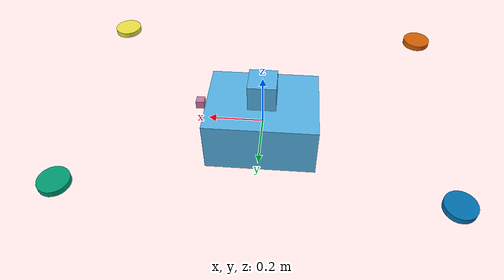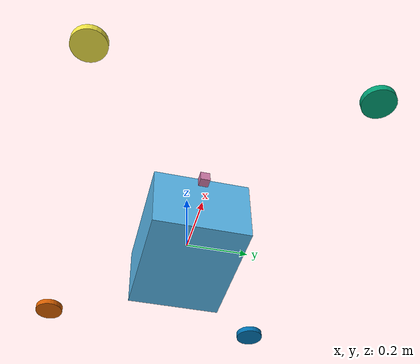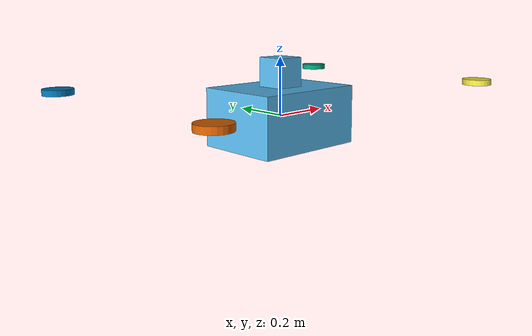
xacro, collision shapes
<?xml version="1.0"?>
<robot name="atv_bot" xmlns:xacro="http://www.ros.org/wiki/xacro">

  <!-- Xacro Includes -->
  <xacro:include filename="robot.gazebo"/>

  <xacro:include filename="wheel_macro.xacro"/>

  <!-- Mesh properties -->
  <xacro:property name="body_mesh_file" value="package://my_bot/description/meshes/ATV_Chassis.dae"/>
  <xacro:property name="wheel_mesh" value="package://my_bot/description/meshes/Wheel.dae"/>
  <xacro:property name="mesh_scale" value="1 1 1"/>

  <!-- Frame root for SLAM/navigation -->
  <link name="base_footprint"/>
  <joint name="base_footprint_joint" type="fixed">
    <origin xyz="0 0 0" rpy="0 0 0"/>
    <parent link="base_footprint"/>
    <child link="base_link"/>
  </joint>

  <!-- Base Link using ATV chassis -->
  <link name="base_link">
    <inertial>
      <mass value="15.0"/>
      <origin xyz="0 0 0" rpy="0 0 0"/>
      <inertia ixx="0.0625" ixy="0" ixz="0" iyy="0.2125" iyz="0" izz="0.25"/>
    </inertial>

    <collision>
      <origin xyz="0 0 0" rpy="0 0 0"/>
      <geometry>
        <box size="0.4 0.3 0.2"/>
      </geometry>
    </collision>

    <visual>
      <origin xyz="0 0 0" rpy="0 0 0"/>
      <geometry>
        <mesh filename="${body_mesh_file}" scale="${mesh_scale}"/>
      </geometry>
    </visual>
  </link>

  <!-- Wheels using macro (you must define the macro in wheel_macro.xacro) -->
  <xacro:add_wheel wheel_name="front_left_wheel"  xyz="0.3  0.2  0.05" rpy="0 0 0" mesh="${wheel_mesh}"/>
  <xacro:add_wheel wheel_name="front_right_wheel" xyz="0.3 -0.2  0.05" rpy="0 0 0" mesh="${wheel_mesh}"/>
  <xacro:add_wheel wheel_name="rear_left_wheel"   xyz="-0.3  0.2  0.05" rpy="0 0 0" mesh="${wheel_mesh}"/>
  <xacro:add_wheel wheel_name="rear_right_wheel"  xyz="-0.3 -0.2  0.05" rpy="0 0 0" mesh="${wheel_mesh}"/>

  <!-- Camera -->
  <joint type="fixed" name="camera_joint">
    <origin xyz="0.225 0 0.075" rpy="0 0 0"/>
    <parent link="base_link"/>
    <child link="camera_link"/>
  </joint>

  <link name="camera_link">
    <inertial>
      <mass value="0.1"/>
      <origin xyz="0 0 0" rpy="0 0 0"/>
      <inertia ixx="1e-6" ixy="0" ixz="0" iyy="1e-6" iyz="0" izz="1e-6"/>
    </inertial>
    <collision>
      <geometry><box size="0.03 0.03 0.03"/></geometry>
    </collision>
    <visual>
      <geometry><box size="0.03 0.03 0.03"/></geometry>
    </visual>
  </link>

  <joint type="fixed" name="camera_optical_joint">
    <origin xyz="0 0 0" rpy="-1.5707 0 -1.5707"/>
    <parent link="camera_link"/>
    <child link="camera_link_optical"/>
  </joint>

  <link name="camera_link_optical"/>

  <!-- IMU -->
  <joint name="imu_joint" type="fixed">
    <origin xyz="0 0 0" rpy="0 0 0"/>
    <parent link="base_link"/>
    <child link="imu_link"/>
  </joint>
  <link name="imu_link"/>

  <!-- Lidar -->
  <joint type="fixed" name="scan_joint">
    <origin xyz="0.0 0 0.15" rpy="0 0 0"/>
    <parent link="base_link"/>
    <child link="scan_link"/>
  </joint>

  <link name="scan_link">
    <inertial>
      <mass value="1e-5"/>
      <origin xyz="0 0 0" rpy="0 0 0"/>
      <inertia ixx="1e-6" ixy="0" ixz="0" iyy="1e-6" iyz="0" izz="1e-6"/>
    </inertial>
    <collision>
      <geometry><box size="0.1 0.1 0.1"/></geometry>
    </collision>
    <visual>
      <geometry><mesh filename="package://my_bot/description/meshes/lidar.dae"/></geometry>
    </visual>
  </link>

</robot>

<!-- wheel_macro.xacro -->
<robot xmlns:xacro="http://www.ros.org/wiki/xacro">

  <xacro:macro name="add_wheel" params="wheel_name xyz rpy mesh">
    <link name="${wheel_name}_link">
      <visual>
        <origin xyz="${xyz}" rpy="${rpy}"/>
        <geometry>
          <mesh filename="${mesh}" scale="1 1 1"/>
        </geometry>
      </visual>
      <collision>
        <origin xyz="${xyz}" rpy="${rpy}"/>
        <geometry>
          <cylinder radius="0.05" length="0.02"/>
        </geometry>
      </collision>
      <inertial>
        <mass value="0.5"/>
        <origin xyz="0 0 0" rpy="0 0 0"/>
        <inertia ixx="0.01" iyy="0.01" izz="0.01"
                 ixy="0.0" ixz="0.0" iyz="0.0"/>
      </inertial>
    </link>

    <joint name="${wheel_name}_joint" type="continuous">
      <parent link="base_link"/>
      <child link="${wheel_name}_link"/>
      <origin xyz="${xyz}" rpy="${rpy}"/>
      <axis xyz="0 1 0"/>
      <limit effort="5.0" velocity="10.0"/>
    </joint>
  </xacro:macro>

</robot>
